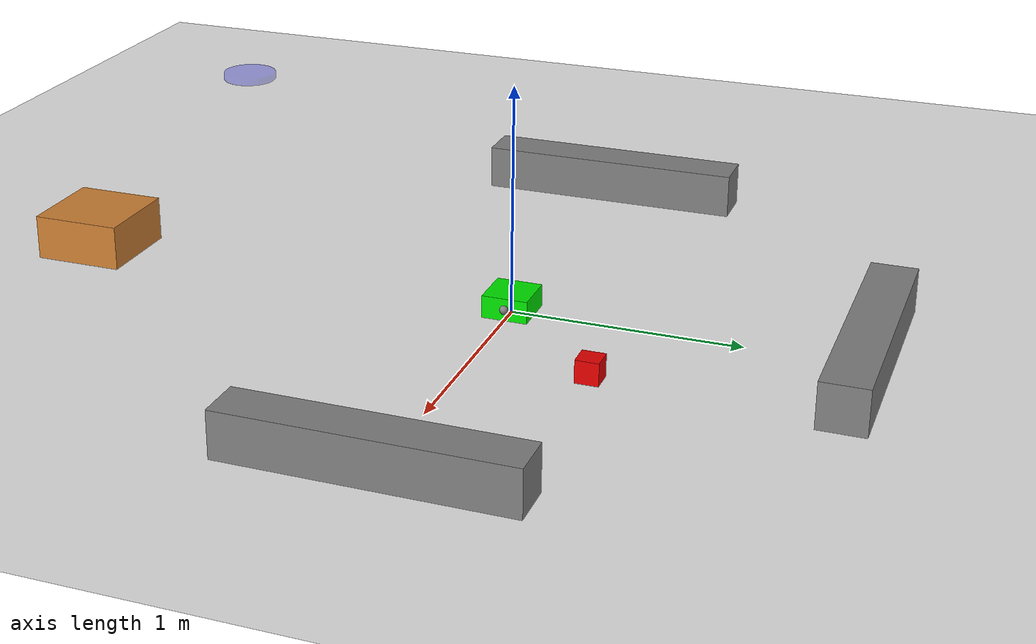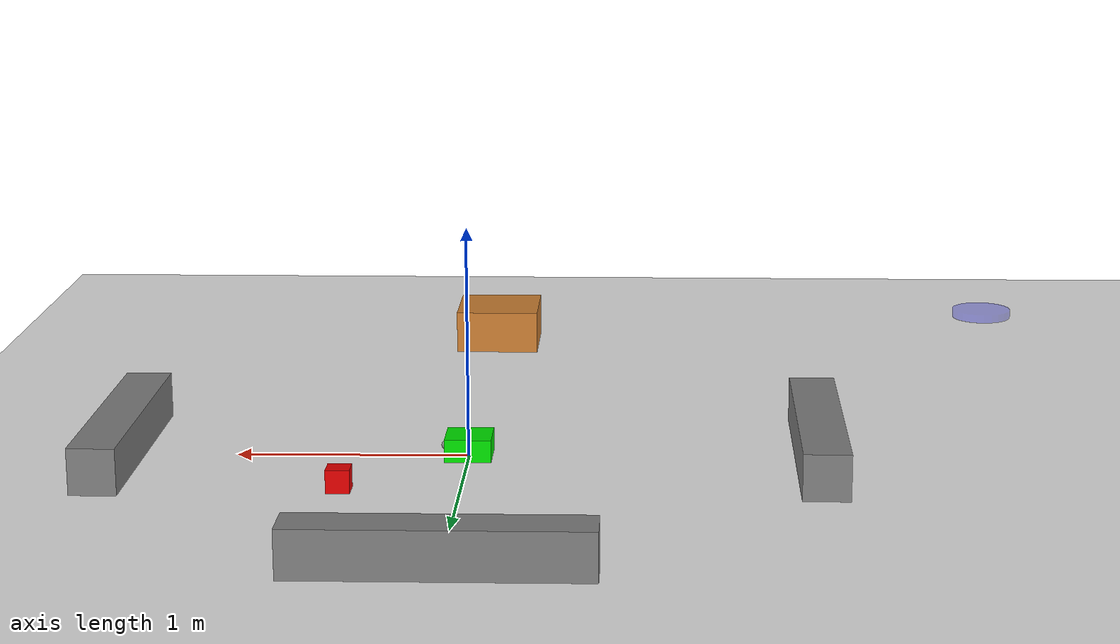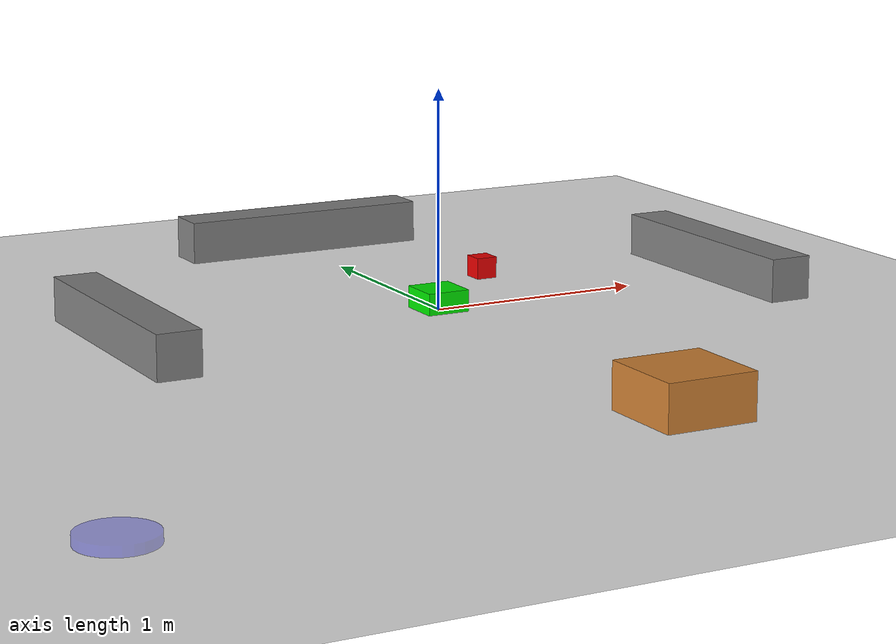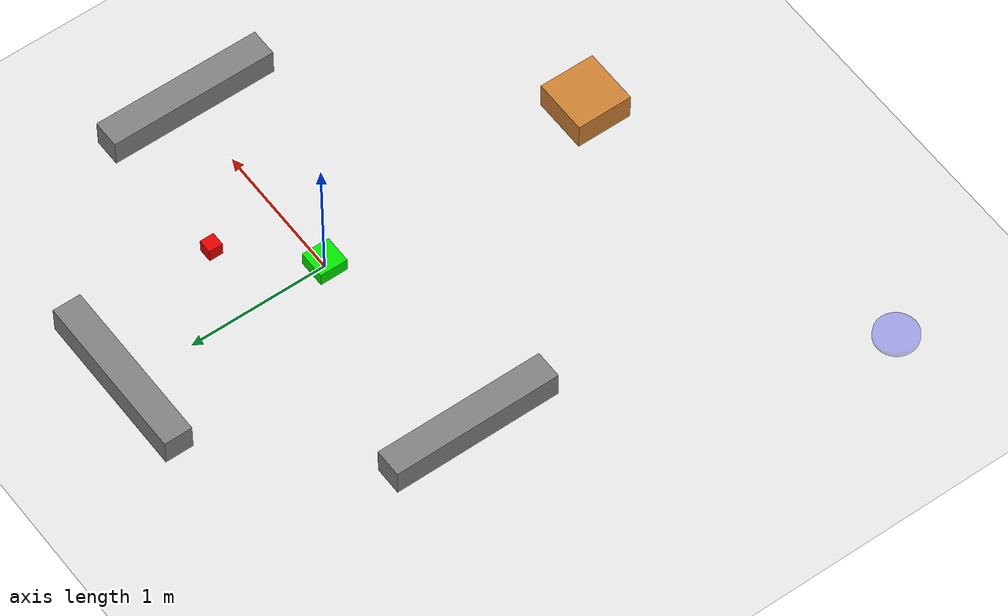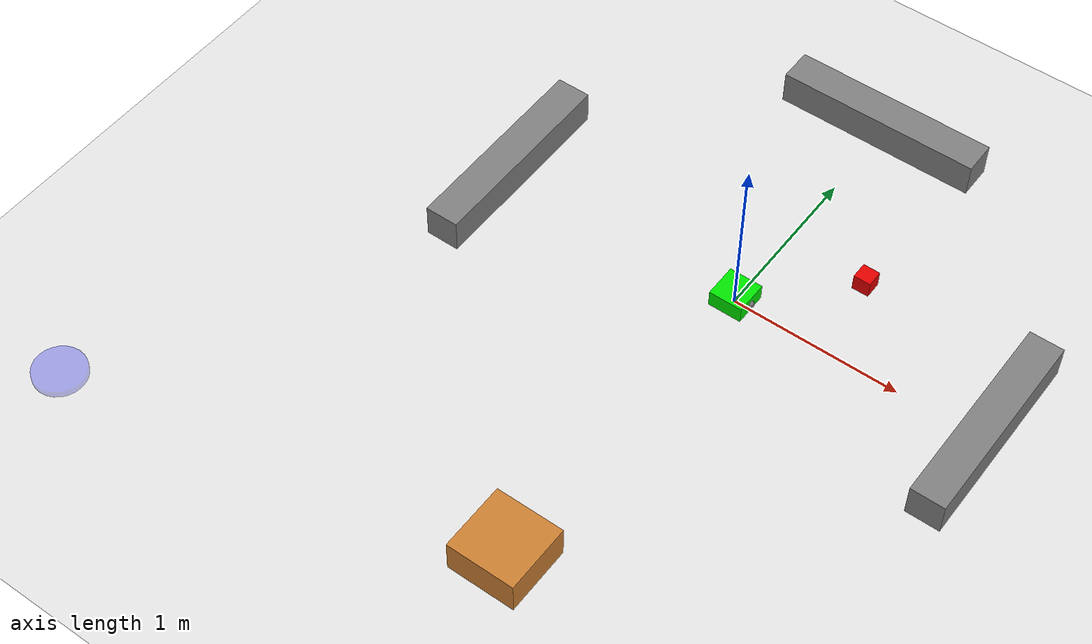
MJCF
<mujoco>
  <option timestep="0.02" gravity="0 0 -9.81"/>

  <worldbody>
    <light diffuse=".5 .5 .5" pos="0 0 3" dir="0 0 -1"/>
    <geom type="plane" size="4 4 0.1" rgba=".9 .9 .9 1" friction="1 0.5 0.5"/>

    <!-- Robot with proper movement -->
    <body name="robot" pos="0 0 0.05">
      <joint name="robot_x" type="slide" axis="1 0 0" range="-4 4" damping="0.5"/>
      <joint name="robot_y" type="slide" axis="0 1 0" range="-4 4" damping="0.5"/>
      <geom type="box" size=".1 .1 .05" rgba="0 .9 0 1" mass="1"/>
      <site name="gripper" pos="0.1 0 0" size="0.02"/>
    </body>

    <!-- Package that can be moved -->
    <body name="package" pos="0.5 0.5 0.05">
      <joint name="package_x" type="slide" axis="1 0 0" range="-4 4"/>
      <joint name="package_y" type="slide" axis="0 1 0" range="-4 4"/>
      <geom type="box" size=".05 .05 .05" rgba=".9 0 0 1" mass="0.1"/>
    </body>

    <!-- Target zone -->
    <body name="target" pos="-2.5 -2.5 0.05">
      <geom type="cylinder" size=".15 .02" rgba="0 0 .9 0.3"/>
    </body>

    <!-- Shelves as obstacles -->
    <body name="shelf1" pos="1.5 0 0.1">
      <geom type="box" size="0.1 0.6 0.1" rgba="0.5 0.5 0.5 1"/>
    </body>
    <body name="shelf2" pos="-1.5 0 0.1">
      <geom type="box" size="0.1 0.6 0.1" rgba="0.5 0.5 0.5 1"/>
    </body>
    <body name="shelf3" pos="0 1.5 0.1">
      <geom type="box" size="0.6 0.1 0.1" rgba="0.5 0.5 0.5 1"/>
    </body>

    <!-- NEW: Moving Obstacle - Positioned to block southern path -->
    <body name="moving_obstacle" pos="0 -2 0.1">
      <joint name="obstacle_slide" type="slide" axis="1 0 0" range="-3 3" damping="0.001" stiffness="0"/>
      <geom type="box" size="0.2 0.2 0.1" rgba="0.8 0.5 0.2 1" mass="0.01"/>
    </body>

  </worldbody>

  <actuator>
    <motor joint="robot_x" name="robot_x_motor" gear="50" ctrllimited="true" ctrlrange="-1 1"/>
    <motor joint="robot_y" name="robot_y_motor" gear="50" ctrllimited="true" ctrlrange="-1 1"/>
    <!-- NEW: Actuator for the moving obstacle - WELL CONTROLLED -->
    <motor joint="obstacle_slide" name="obstacle_motor" gear="30" ctrllimited="true" ctrlrange="-1 1"/>
  </actuator>

  <!-- Connect robot and package when close -->
  <equality>
    <connect body1="robot" body2="package" anchor="0.1 0 0" solimp="0.9 0.95 0.001" solref="0.02 1"/>
  </equality>
</mujoco>
